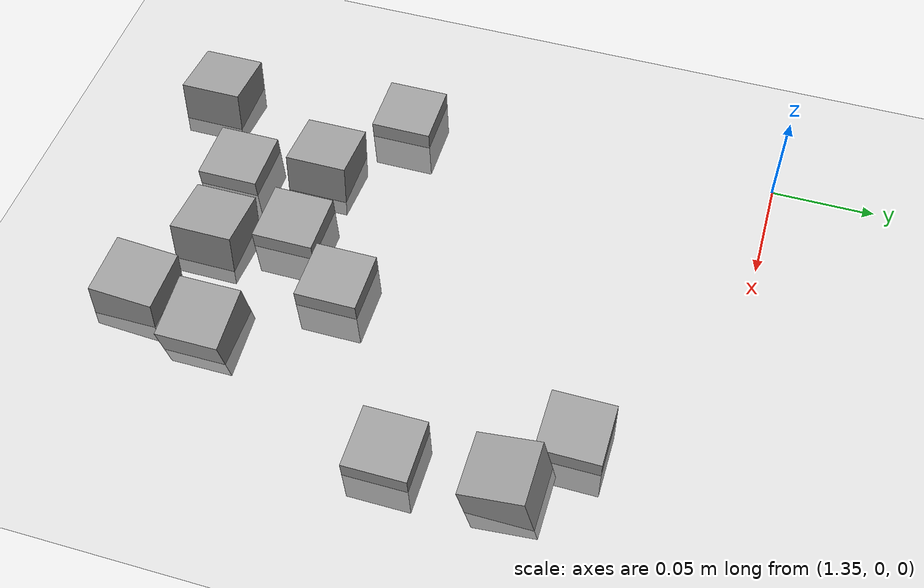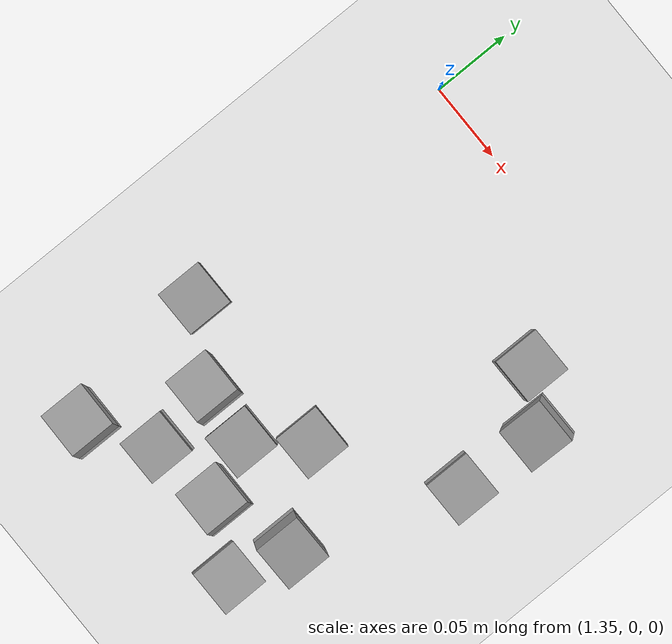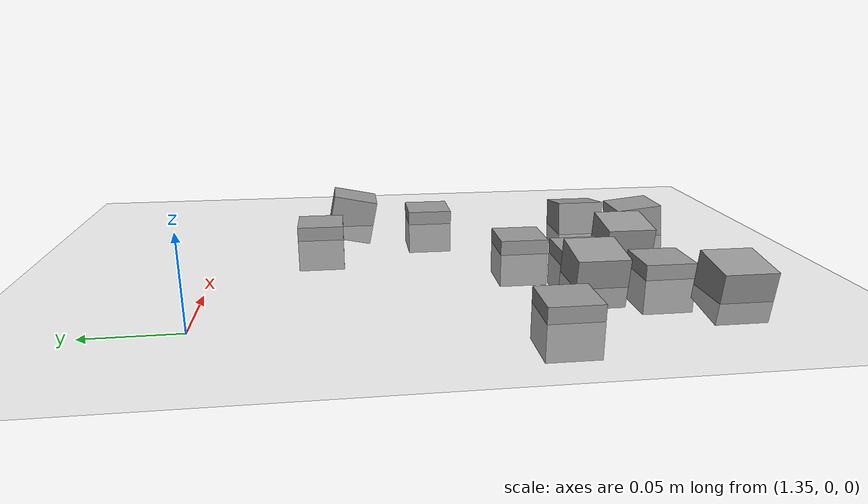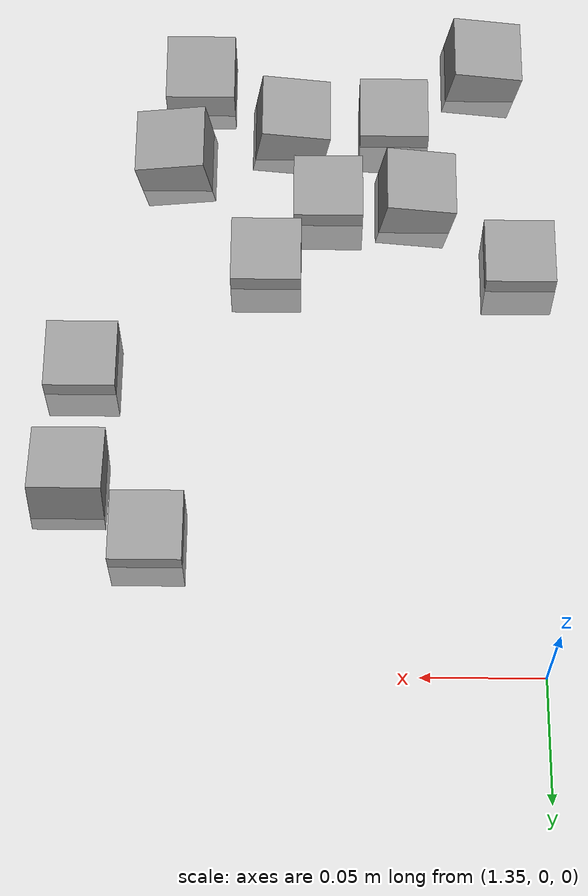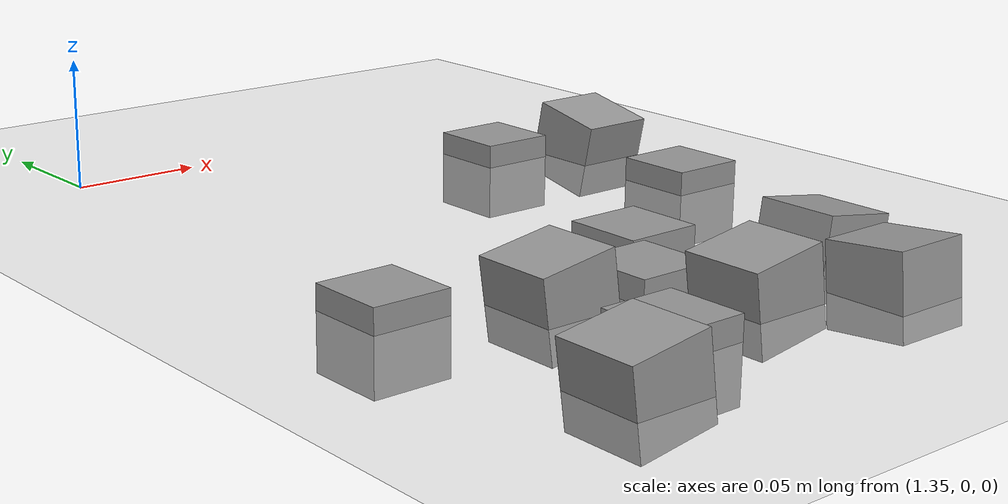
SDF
<sdf version="1.7">
 <world name="default">
  <model name="ground_plane">
   <static>1</static>
   <link name="link">
    <collision name="collision">
     <geometry><plane><normal>0 0 1</normal><size>100 100</size></plane></geometry>
     <surface><friction><ode><mu>100</mu><mu2>50</mu2></ode></friction></surface>
    </collision>
    <visual name="visual">
     <cast_shadows>0</cast_shadows>
     <geometry><plane><normal>0 0 1</normal><size>100 100</size></plane></geometry>
     <material>
      <script><uri>file://media/materials/scripts/gazebo.material</uri><name>Gazebo/Grey</name></script>
     </material>
    </visual>
   </link>
  </model>
  <model name="stone_road">
   <link name="link_0_clone_0">
    <inertial>
     <mass>1</mass>
     <inertia>
      <ixx>0.166667</ixx>
      <ixy>0</ixy>
      <ixz>0</ixz>
      <iyy>0.166667</iyy>
      <iyz>0</iyz>
      <izz>0.166667</izz>
     </inertia>
    </inertial>
    <pose>-0.104982 -0.15412 0.003778 0.2 -0 0</pose>
    <kinematic>1</kinematic>
    <visual name="visual">
     <geometry><box><size>0.03 0.03 0.03</size></box></geometry>
     <material>
      <lighting>1</lighting>
      <script><uri>file://media/materials/scripts/gazebo.material</uri><name>Gazebo/Grey</name></script>
      <shader type="pixel"><normal_map>__default__</normal_map></shader>
      <ambient>0.3 0.3 0.3 1</ambient>
      <diffuse>0.7 0.7 0.7 1</diffuse>
      <specular>0.01 0.01 0.01 1</specular>
      <emissive>0 0 0 1</emissive>
     </material>
    </visual>
    <collision name="collision">
     <geometry><box><size>0.03 0.03 0.03</size></box></geometry>
     <surface>
      <friction>
       <ode><mu>1</mu><mu2>1</mu2><fdir1>0 0 0</fdir1><slip1>0</slip1><slip2>0</slip2></ode>
       <torsional>
        <coefficient>1</coefficient>
        <patch_radius>0</patch_radius>
        <surface_radius>0</surface_radius>
        <use_patch_radius>1</use_patch_radius>
        <ode><slip>0</slip></ode>
       </torsional>
      </friction>
      <bounce><restitution_coefficient>0</restitution_coefficient><threshold>1e+06</threshold></bounce>
      <contact>
       <collide_without_contact>0</collide_without_contact>
       <collide_without_contact_bitmask>1</collide_without_contact_bitmask>
       <collide_bitmask>1</collide_bitmask>
       <ode>
        <soft_cfm>0</soft_cfm>
        <soft_erp>0.2</soft_erp>
        <kp>1e+13</kp>
        <kd>1</kd>
        <max_vel>0.01</max_vel>
        <min_depth>0</min_depth>
       </ode>
       <bullet>
        <split_impulse>1</split_impulse>
        <split_impulse_penetration_threshold>-0.01</split_impulse_penetration_threshold>
        <soft_cfm>0</soft_cfm>
        <soft_erp>0.2</soft_erp>
        <kp>1e+13</kp>
        <kd>1</kd>
       </bullet>
      </contact>
     </surface>
    </collision>
   </link>
   <link name="link_0_clone_2_clone_2_clone_13_clone_clone_16_clone_27">
    <inertial>
     <mass>1</mass>
     <inertia>
      <ixx>0.166667</ixx>
      <ixy>0</ixy>
      <ixz>0</ixz>
      <iyy>0.166667</iyy>
      <iyz>0</iyz>
      <izz>0.166667</izz>
     </inertia>
    </inertial>
    <pose>-0.137316 -0.132225 -0.006222 0 -0 0</pose>
    <kinematic>1</kinematic>
    <visual name="visual">
     <geometry><box><size>0.03 0.03 0.03</size></box></geometry>
     <material>
      <lighting>1</lighting>
      <script><uri>file://media/materials/scripts/gazebo.material</uri><name>Gazebo/Grey</name></script>
      <shader type="pixel"><normal_map>__default__</normal_map></shader>
      <ambient>0.3 0.3 0.3 1</ambient>
      <diffuse>0.7 0.7 0.7 1</diffuse>
      <specular>0.01 0.01 0.01 1</specular>
      <emissive>0 0 0 1</emissive>
     </material>
    </visual>
    <collision name="collision">
     <geometry><box><size>0.03 0.03 0.03</size></box></geometry>
     <surface>
      <friction>
       <ode><mu>1</mu><mu2>1</mu2><fdir1>0 0 0</fdir1><slip1>0</slip1><slip2>0</slip2></ode>
       <torsional>
        <coefficient>1</coefficient>
        <patch_radius>0</patch_radius>
        <surface_radius>0</surface_radius>
        <use_patch_radius>1</use_patch_radius>
        <ode><slip>0</slip></ode>
       </torsional>
      </friction>
      <bounce><restitution_coefficient>0</restitution_coefficient><threshold>1e+06</threshold></bounce>
      <contact>
       <collide_without_contact>0</collide_without_contact>
       <collide_without_contact_bitmask>1</collide_without_contact_bitmask>
       <collide_bitmask>1</collide_bitmask>
       <ode>
        <soft_cfm>0</soft_cfm>
        <soft_erp>0.2</soft_erp>
        <kp>1e+13</kp>
        <kd>1</kd>
        <max_vel>0.01</max_vel>
        <min_depth>0</min_depth>
       </ode>
       <bullet>
        <split_impulse>1</split_impulse>
        <split_impulse_penetration_threshold>-0.01</split_impulse_penetration_threshold>
        <soft_cfm>0</soft_cfm>
        <soft_erp>0.2</soft_erp>
        <kp>1e+13</kp>
        <kd>1</kd>
       </bullet>
      </contact>
     </surface>
    </collision>
   </link>
   <link name="link_0_clone_2_clone_2_clone_13_clone_clone_16_clone_28">
    <inertial>
     <mass>1</mass>
     <inertia>
      <ixx>0.166667</ixx>
      <ixy>0</ixy>
      <ixz>0</ixz>
      <iyy>0.166667</iyy>
      <iyz>0</iyz>
      <izz>0.166667</izz>
     </inertia>
    </inertial>
    <pose>-0.10708 -0.209042 -0.006222 0 -0 0</pose>
    <kinematic>1</kinematic>
    <visual name="visual">
     <geometry><box><size>0.03 0.03 0.03</size></box></geometry>
     <material>
      <lighting>1</lighting>
      <script><uri>file://media/materials/scripts/gazebo.material</uri><name>Gazebo/Grey</name></script>
      <shader type="pixel"><normal_map>__default__</normal_map></shader>
      <ambient>0.3 0.3 0.3 1</ambient>
      <diffuse>0.7 0.7 0.7 1</diffuse>
      <specular>0.01 0.01 0.01 1</specular>
      <emissive>0 0 0 1</emissive>
     </material>
    </visual>
    <collision name="collision">
     <geometry><box><size>0.03 0.03 0.03</size></box></geometry>
     <surface>
      <friction>
       <ode><mu>1</mu><mu2>1</mu2><fdir1>0 0 0</fdir1><slip1>0</slip1><slip2>0</slip2></ode>
       <torsional>
        <coefficient>1</coefficient>
        <patch_radius>0</patch_radius>
        <surface_radius>0</surface_radius>
        <use_patch_radius>1</use_patch_radius>
        <ode><slip>0</slip></ode>
       </torsional>
      </friction>
      <bounce><restitution_coefficient>0</restitution_coefficient><threshold>1e+06</threshold></bounce>
      <contact>
       <collide_without_contact>0</collide_without_contact>
       <collide_without_contact_bitmask>1</collide_without_contact_bitmask>
       <collide_bitmask>1</collide_bitmask>
       <ode>
        <soft_cfm>0</soft_cfm>
        <soft_erp>0.2</soft_erp>
        <kp>1e+13</kp>
        <kd>1</kd>
        <max_vel>0.01</max_vel>
        <min_depth>0</min_depth>
       </ode>
       <bullet>
        <split_impulse>1</split_impulse>
        <split_impulse_penetration_threshold>-0.01</split_impulse_penetration_threshold>
        <soft_cfm>0</soft_cfm>
        <soft_erp>0.2</soft_erp>
        <kp>1e+13</kp>
        <kd>1</kd>
       </bullet>
      </contact>
     </surface>
    </collision>
   </link>
   <static>0</static>
   <pose>1.64646 0.071889 -0 0 -0 0</pose>
  </model>
  <model name="stone_road_1">
   <link name="link_0_clone_2_clone_2_clone_10">
    <inertial>
     <mass>1</mass>
     <inertia>
      <ixx>0.166667</ixx>
      <ixy>0</ixy>
      <ixz>0</ixz>
      <iyy>0.166667</iyy>
      <iyz>0</iyz>
      <izz>0.166667</izz>
     </inertia>
    </inertial>
    <pose>0.09869 0.163436 0.003778 0 -0.15 0</pose>
    <kinematic>1</kinematic>
    <visual name="visual">
     <geometry><box><size>0.03 0.03 0.03</size></box></geometry>
     <material>
      <lighting>1</lighting>
      <script><uri>file://media/materials/scripts/gazebo.material</uri><name>Gazebo/Grey</name></script>
      <shader type="pixel"><normal_map>__default__</normal_map></shader>
      <ambient>0.3 0.3 0.3 1</ambient>
      <diffuse>0.7 0.7 0.7 1</diffuse>
      <specular>0.01 0.01 0.01 1</specular>
      <emissive>0 0 0 1</emissive>
     </material>
    </visual>
    <collision name="collision">
     <geometry><box><size>0.03 0.03 0.03</size></box></geometry>
     <surface>
      <friction>
       <ode><mu>1</mu><mu2>1</mu2><fdir1>0 0 0</fdir1><slip1>0</slip1><slip2>0</slip2></ode>
       <torsional>
        <coefficient>1</coefficient>
        <patch_radius>0</patch_radius>
        <surface_radius>0</surface_radius>
        <use_patch_radius>1</use_patch_radius>
        <ode><slip>0</slip></ode>
       </torsional>
      </friction>
      <bounce><restitution_coefficient>0</restitution_coefficient><threshold>1e+06</threshold></bounce>
      <contact>
       <collide_without_contact>0</collide_without_contact>
       <collide_without_contact_bitmask>1</collide_without_contact_bitmask>
       <collide_bitmask>1</collide_bitmask>
       <ode>
        <soft_cfm>0</soft_cfm>
        <soft_erp>0.2</soft_erp>
        <kp>1e+13</kp>
        <kd>1</kd>
        <max_vel>0.01</max_vel>
        <min_depth>0</min_depth>
       </ode>
       <bullet>
        <split_impulse>1</split_impulse>
        <split_impulse_penetration_threshold>-0.01</split_impulse_penetration_threshold>
        <soft_cfm>0</soft_cfm>
        <soft_erp>0.2</soft_erp>
        <kp>1e+13</kp>
        <kd>1</kd>
       </bullet>
      </contact>
     </surface>
    </collision>
   </link>
   <link name="link_0_clone_2_clone_2_clone_12">
    <inertial>
     <mass>1</mass>
     <inertia>
      <ixx>0.166667</ixx>
      <ixy>0</ixy>
      <ixz>0</ixz>
      <iyy>0.166667</iyy>
      <iyz>0</iyz>
      <izz>0.166667</izz>
     </inertia>
    </inertial>
    <pose>0.044693 0.200081 0.003778 0 -0.15 0</pose>
    <kinematic>1</kinematic>
    <visual name="visual">
     <geometry><box><size>0.03 0.03 0.03</size></box></geometry>
     <material>
      <lighting>1</lighting>
      <script><uri>file://media/materials/scripts/gazebo.material</uri><name>Gazebo/Grey</name></script>
      <shader type="pixel"><normal_map>__default__</normal_map></shader>
      <ambient>0.3 0.3 0.3 1</ambient>
      <diffuse>0.7 0.7 0.7 1</diffuse>
      <specular>0.01 0.01 0.01 1</specular>
      <emissive>0 0 0 1</emissive>
     </material>
    </visual>
    <collision name="collision">
     <geometry><box><size>0.03 0.03 0.03</size></box></geometry>
     <surface>
      <friction>
       <ode><mu>1</mu><mu2>1</mu2><fdir1>0 0 0</fdir1><slip1>0</slip1><slip2>0</slip2></ode>
       <torsional>
        <coefficient>1</coefficient>
        <patch_radius>0</patch_radius>
        <surface_radius>0</surface_radius>
        <use_patch_radius>1</use_patch_radius>
        <ode><slip>0</slip></ode>
       </torsional>
      </friction>
      <bounce><restitution_coefficient>0</restitution_coefficient><threshold>1e+06</threshold></bounce>
      <contact>
       <collide_without_contact>0</collide_without_contact>
       <collide_without_contact_bitmask>1</collide_without_contact_bitmask>
       <collide_bitmask>1</collide_bitmask>
       <ode>
        <soft_cfm>0</soft_cfm>
        <soft_erp>0.2</soft_erp>
        <kp>1e+13</kp>
        <kd>1</kd>
        <max_vel>0.01</max_vel>
        <min_depth>0</min_depth>
       </ode>
       <bullet>
        <split_impulse>1</split_impulse>
        <split_impulse_penetration_threshold>-0.01</split_impulse_penetration_threshold>
        <soft_cfm>0</soft_cfm>
        <soft_erp>0.2</soft_erp>
        <kp>1e+13</kp>
        <kd>1</kd>
       </bullet>
      </contact>
     </surface>
    </collision>
   </link>
   <link name="link_0_clone_2_clone_2_clone_13">
    <inertial>
     <mass>1</mass>
     <inertia>
      <ixx>0.166667</ixx>
      <ixy>0</ixy>
      <ixz>0</ixz>
      <iyy>0.166667</iyy>
      <iyz>0</iyz>
      <izz>0.166667</izz>
     </inertia>
    </inertial>
    <pose>0.014407 0.13189 0.003778 0 -0.15 0</pose>
    <kinematic>1</kinematic>
    <visual name="visual">
     <geometry><box><size>0.03 0.03 0.03</size></box></geometry>
     <material>
      <lighting>1</lighting>
      <script><uri>file://media/materials/scripts/gazebo.material</uri><name>Gazebo/Grey</name></script>
      <shader type="pixel"><normal_map>__default__</normal_map></shader>
      <ambient>0.3 0.3 0.3 1</ambient>
      <diffuse>0.7 0.7 0.7 1</diffuse>
      <specular>0.01 0.01 0.01 1</specular>
      <emissive>0 0 0 1</emissive>
     </material>
    </visual>
    <collision name="collision">
     <geometry><box><size>0.03 0.03 0.03</size></box></geometry>
     <surface>
      <friction>
       <ode><mu>1</mu><mu2>1</mu2><fdir1>0 0 0</fdir1><slip1>0</slip1><slip2>0</slip2></ode>
       <torsional>
        <coefficient>1</coefficient>
        <patch_radius>0</patch_radius>
        <surface_radius>0</surface_radius>
        <use_patch_radius>1</use_patch_radius>
        <ode><slip>0</slip></ode>
       </torsional>
      </friction>
      <bounce><restitution_coefficient>0</restitution_coefficient><threshold>1e+06</threshold></bounce>
      <contact>
       <collide_without_contact>0</collide_without_contact>
       <collide_without_contact_bitmask>1</collide_without_contact_bitmask>
       <collide_bitmask>1</collide_bitmask>
       <ode>
        <soft_cfm>0</soft_cfm>
        <soft_erp>0.2</soft_erp>
        <kp>1e+13</kp>
        <kd>1</kd>
        <max_vel>0.01</max_vel>
        <min_depth>0</min_depth>
       </ode>
       <bullet>
        <split_impulse>1</split_impulse>
        <split_impulse_penetration_threshold>-0.01</split_impulse_penetration_threshold>
        <soft_cfm>0</soft_cfm>
        <soft_erp>0.2</soft_erp>
        <kp>1e+13</kp>
        <kd>1</kd>
       </bullet>
      </contact>
     </surface>
    </collision>
   </link>
   <link name="link_0_clone_2_clone_2_clone_13_clone">
    <inertial>
     <mass>1</mass>
     <inertia>
      <ixx>0.166667</ixx>
      <ixy>0</ixy>
      <ixz>0</ixz>
      <iyy>0.166667</iyy>
      <iyz>0</iyz>
      <izz>0.166667</izz>
     </inertia>
    </inertial>
    <pose>0.138846 0.140956 0.003778 -0.1 0 0</pose>
    <kinematic>1</kinematic>
    <visual name="visual">
     <geometry><box><size>0.03 0.03 0.03</size></box></geometry>
     <material>
      <lighting>1</lighting>
      <script><uri>file://media/materials/scripts/gazebo.material</uri><name>Gazebo/Grey</name></script>
      <shader type="pixel"><normal_map>__default__</normal_map></shader>
      <ambient>0.3 0.3 0.3 1</ambient>
      <diffuse>0.7 0.7 0.7 1</diffuse>
      <specular>0.01 0.01 0.01 1</specular>
      <emissive>0 0 0 1</emissive>
     </material>
    </visual>
    <collision name="collision">
     <geometry><box><size>0.03 0.03 0.03</size></box></geometry>
     <surface>
      <friction>
       <ode><mu>1</mu><mu2>1</mu2><fdir1>0 0 0</fdir1><slip1>0</slip1><slip2>0</slip2></ode>
       <torsional>
        <coefficient>1</coefficient>
        <patch_radius>0</patch_radius>
        <surface_radius>0</surface_radius>
        <use_patch_radius>1</use_patch_radius>
        <ode><slip>0</slip></ode>
       </torsional>
      </friction>
      <bounce><restitution_coefficient>0</restitution_coefficient><threshold>1e+06</threshold></bounce>
      <contact>
       <collide_without_contact>0</collide_without_contact>
       <collide_without_contact_bitmask>1</collide_without_contact_bitmask>
       <collide_bitmask>1</collide_bitmask>
       <ode>
        <soft_cfm>0</soft_cfm>
        <soft_erp>0.2</soft_erp>
        <kp>1e+13</kp>
        <kd>1</kd>
        <max_vel>0.01</max_vel>
        <min_depth>0</min_depth>
       </ode>
       <bullet>
        <split_impulse>1</split_impulse>
        <split_impulse_penetration_threshold>-0.01</split_impulse_penetration_threshold>
        <soft_cfm>0</soft_cfm>
        <soft_erp>0.2</soft_erp>
        <kp>1e+13</kp>
        <kd>1</kd>
       </bullet>
      </contact>
     </surface>
    </collision>
   </link>
   <link name="link_0_clone_2_clone_2_clone_13_clone_clone_16">
    <inertial>
     <mass>1</mass>
     <inertia>
      <ixx>0.166667</ixx>
      <ixy>0</ixy>
      <ixz>0</ixz>
      <iyy>0.166667</iyy>
      <iyz>0</iyz>
      <izz>0.166667</izz>
     </inertia>
    </inertial>
    <pose>0.108948 0.22849 -0.006222 0 -0 0</pose>
    <kinematic>1</kinematic>
    <visual name="visual">
     <geometry><box><size>0.03 0.03 0.03</size></box></geometry>
     <material>
      <lighting>1</lighting>
      <script><uri>file://media/materials/scripts/gazebo.material</uri><name>Gazebo/Grey</name></script>
      <shader type="pixel"><normal_map>__default__</normal_map></shader>
      <ambient>0.3 0.3 0.3 1</ambient>
      <diffuse>0.7 0.7 0.7 1</diffuse>
      <specular>0.01 0.01 0.01 1</specular>
      <emissive>0 0 0 1</emissive>
     </material>
    </visual>
    <collision name="collision">
     <geometry><box><size>0.03 0.03 0.03</size></box></geometry>
     <surface>
      <friction>
       <ode><mu>1</mu><mu2>1</mu2><fdir1>0 0 0</fdir1><slip1>0</slip1><slip2>0</slip2></ode>
       <torsional>
        <coefficient>1</coefficient>
        <patch_radius>0</patch_radius>
        <surface_radius>0</surface_radius>
        <use_patch_radius>1</use_patch_radius>
        <ode><slip>0</slip></ode>
       </torsional>
      </friction>
      <bounce><restitution_coefficient>0</restitution_coefficient><threshold>1e+06</threshold></bounce>
      <contact>
       <collide_without_contact>0</collide_without_contact>
       <collide_without_contact_bitmask>1</collide_without_contact_bitmask>
       <collide_bitmask>1</collide_bitmask>
       <ode>
        <soft_cfm>0</soft_cfm>
        <soft_erp>0.2</soft_erp>
        <kp>1e+13</kp>
        <kd>1</kd>
        <max_vel>0.01</max_vel>
        <min_depth>0</min_depth>
       </ode>
       <bullet>
        <split_impulse>1</split_impulse>
        <split_impulse_penetration_threshold>-0.01</split_impulse_penetration_threshold>
        <soft_cfm>0</soft_cfm>
        <soft_erp>0.2</soft_erp>
        <kp>1e+13</kp>
        <kd>1</kd>
       </bullet>
      </contact>
     </surface>
    </collision>
   </link>
   <link name="link_0_clone_2_clone_2_clone_13_clone_clone_16_clone">
    <inertial>
     <mass>1</mass>
     <inertia>
      <ixx>0.166667</ixx>
      <ixy>0</ixy>
      <ixz>0</ixz>
      <iyy>0.166667</iyy>
      <iyz>0</iyz>
      <izz>0.166667</izz>
     </inertia>
    </inertial>
    <pose>0.0535 0.156403 -0.006222 0 -0 0</pose>
    <kinematic>1</kinematic>
    <visual name="visual">
     <geometry><box><size>0.03 0.03 0.03</size></box></geometry>
     <material>
      <lighting>1</lighting>
      <script><uri>file://media/materials/scripts/gazebo.material</uri><name>Gazebo/Grey</name></script>
      <shader type="pixel"><normal_map>__default__</normal_map></shader>
      <ambient>0.3 0.3 0.3 1</ambient>
      <diffuse>0.7 0.7 0.7 1</diffuse>
      <specular>0.01 0.01 0.01 1</specular>
      <emissive>0 0 0 1</emissive>
     </material>
    </visual>
    <collision name="collision">
     <geometry><box><size>0.03 0.03 0.03</size></box></geometry>
     <surface>
      <friction>
       <ode><mu>1</mu><mu2>1</mu2><fdir1>0 0 0</fdir1><slip1>0</slip1><slip2>0</slip2></ode>
       <torsional>
        <coefficient>1</coefficient>
        <patch_radius>0</patch_radius>
        <surface_radius>0</surface_radius>
        <use_patch_radius>1</use_patch_radius>
        <ode><slip>0</slip></ode>
       </torsional>
      </friction>
      <bounce><restitution_coefficient>0</restitution_coefficient><threshold>1e+06</threshold></bounce>
      <contact>
       <collide_without_contact>0</collide_without_contact>
       <collide_without_contact_bitmask>1</collide_without_contact_bitmask>
       <collide_bitmask>1</collide_bitmask>
       <ode>
        <soft_cfm>0</soft_cfm>
        <soft_erp>0.2</soft_erp>
        <kp>1e+13</kp>
        <kd>1</kd>
        <max_vel>0.01</max_vel>
        <min_depth>0</min_depth>
       </ode>
       <bullet>
        <split_impulse>1</split_impulse>
        <split_impulse_penetration_threshold>-0.01</split_impulse_penetration_threshold>
        <soft_cfm>0</soft_cfm>
        <soft_erp>0.2</soft_erp>
        <kp>1e+13</kp>
        <kd>1</kd>
       </bullet>
      </contact>
     </surface>
    </collision>
   </link>
   <link name="link_0_clone_2_clone_2_clone_13_clone_clone_16_clone_23">
    <inertial>
     <mass>1</mass>
     <inertia>
      <ixx>0.166667</ixx>
      <ixy>0</ixy>
      <ixz>0</ixz>
      <iyy>0.166667</iyy>
      <iyz>0</iyz>
      <izz>0.166667</izz>
     </inertia>
    </inertial>
    <pose>0.000385 0.228664 -0.006222 0 -0 0</pose>
    <kinematic>1</kinematic>
    <visual name="visual">
     <geometry><box><size>0.03 0.03 0.03</size></box></geometry>
     <material>
      <lighting>1</lighting>
      <script><uri>file://media/materials/scripts/gazebo.material</uri><name>Gazebo/Grey</name></script>
      <shader type="pixel"><normal_map>__default__</normal_map></shader>
      <ambient>0.3 0.3 0.3 1</ambient>
      <diffuse>0.7 0.7 0.7 1</diffuse>
      <specular>0.01 0.01 0.01 1</specular>
      <emissive>0 0 0 1</emissive>
     </material>
    </visual>
    <collision name="collision">
     <geometry><box><size>0.03 0.03 0.03</size></box></geometry>
     <surface>
      <friction>
       <ode><mu>1</mu><mu2>1</mu2><fdir1>0 0 0</fdir1><slip1>0</slip1><slip2>0</slip2></ode>
       <torsional>
        <coefficient>1</coefficient>
        <patch_radius>0</patch_radius>
        <surface_radius>0</surface_radius>
        <use_patch_radius>1</use_patch_radius>
        <ode><slip>0</slip></ode>
       </torsional>
      </friction>
      <bounce><restitution_coefficient>0</restitution_coefficient><threshold>1e+06</threshold></bounce>
      <contact>
       <collide_without_contact>0</collide_without_contact>
       <collide_without_contact_bitmask>1</collide_without_contact_bitmask>
       <collide_bitmask>1</collide_bitmask>
       <ode>
        <soft_cfm>0</soft_cfm>
        <soft_erp>0.2</soft_erp>
        <kp>1e+13</kp>
        <kd>1</kd>
        <max_vel>0.01</max_vel>
        <min_depth>0</min_depth>
       </ode>
       <bullet>
        <split_impulse>1</split_impulse>
        <split_impulse_penetration_threshold>-0.01</split_impulse_penetration_threshold>
        <soft_cfm>0</soft_cfm>
        <soft_erp>0.2</soft_erp>
        <kp>1e+13</kp>
        <kd>1</kd>
       </bullet>
      </contact>
     </surface>
    </collision>
   </link>
   <link name="link_0_clone_2_clone_2_clone_13_clone_clone_16_clone_24">
    <inertial>
     <mass>1</mass>
     <inertia>
      <ixx>0.166667</ixx>
      <ixy>0</ixy>
      <ixz>0</ixz>
      <iyy>0.166667</iyy>
      <iyz>0</iyz>
      <izz>0.166667</izz>
     </inertia>
    </inertial>
    <pose>0.08246 0.196776 -0.006222 0 -0 0</pose>
    <kinematic>1</kinematic>
    <visual name="visual">
     <geometry><box><size>0.03 0.03 0.03</size></box></geometry>
     <material>
      <lighting>1</lighting>
      <script><uri>file://media/materials/scripts/gazebo.material</uri><name>Gazebo/Grey</name></script>
      <shader type="pixel"><normal_map>__default__</normal_map></shader>
      <ambient>0.3 0.3 0.3 1</ambient>
      <diffuse>0.7 0.7 0.7 1</diffuse>
      <specular>0.01 0.01 0.01 1</specular>
      <emissive>0 0 0 1</emissive>
     </material>
    </visual>
    <collision name="collision">
     <geometry><box><size>0.03 0.03 0.03</size></box></geometry>
     <surface>
      <friction>
       <ode><mu>1</mu><mu2>1</mu2><fdir1>0 0 0</fdir1><slip1>0</slip1><slip2>0</slip2></ode>
       <torsional>
        <coefficient>1</coefficient>
        <patch_radius>0</patch_radius>
        <surface_radius>0</surface_radius>
        <use_patch_radius>1</use_patch_radius>
        <ode><slip>0</slip></ode>
       </torsional>
      </friction>
      <bounce><restitution_coefficient>0</restitution_coefficient><threshold>1e+06</threshold></bounce>
      <contact>
       <collide_without_contact>0</collide_without_contact>
       <collide_without_contact_bitmask>1</collide_without_contact_bitmask>
       <collide_bitmask>1</collide_bitmask>
       <ode>
        <soft_cfm>0</soft_cfm>
        <soft_erp>0.2</soft_erp>
        <kp>1e+13</kp>
        <kd>1</kd>
        <max_vel>0.01</max_vel>
        <min_depth>0</min_depth>
       </ode>
       <bullet>
        <split_impulse>1</split_impulse>
        <split_impulse_penetration_threshold>-0.01</split_impulse_penetration_threshold>
        <soft_cfm>0</soft_cfm>
        <soft_erp>0.2</soft_erp>
        <kp>1e+13</kp>
        <kd>1</kd>
       </bullet>
      </contact>
     </surface>
    </collision>
   </link>
   <link name="link_0_clone_2_clone_9">
    <inertial>
     <mass>1</mass>
     <inertia>
      <ixx>0.166667</ixx>
      <ixy>0</ixy>
      <ixz>0</ixz>
      <iyy>0.166667</iyy>
      <iyz>0</iyz>
      <izz>0.166667</izz>
     </inertia>
    </inertial>
    <pose>0.148876 0.179752 0.003778 0 0.15 0</pose>
    <kinematic>1</kinematic>
    <visual name="visual">
     <geometry><box><size>0.03 0.03 0.03</size></box></geometry>
     <material>
      <lighting>1</lighting>
      <script><uri>file://media/materials/scripts/gazebo.material</uri><name>Gazebo/Grey</name></script>
      <shader type="pixel"><normal_map>__default__</normal_map></shader>
      <ambient>0.3 0.3 0.3 1</ambient>
      <diffuse>0.7 0.7 0.7 1</diffuse>
      <specular>0.01 0.01 0.01 1</specular>
      <emissive>0 0 0 1</emissive>
     </material>
    </visual>
    <collision name="collision">
     <geometry><box><size>0.03 0.03 0.03</size></box></geometry>
     <surface>
      <friction>
       <ode><mu>1</mu><mu2>1</mu2><fdir1>0 0 0</fdir1><slip1>0</slip1><slip2>0</slip2></ode>
       <torsional>
        <coefficient>1</coefficient>
        <patch_radius>0</patch_radius>
        <surface_radius>0</surface_radius>
        <use_patch_radius>1</use_patch_radius>
        <ode><slip>0</slip></ode>
       </torsional>
      </friction>
      <bounce><restitution_coefficient>0</restitution_coefficient><threshold>1e+06</threshold></bounce>
      <contact>
       <collide_without_contact>0</collide_without_contact>
       <collide_without_contact_bitmask>1</collide_without_contact_bitmask>
       <collide_bitmask>1</collide_bitmask>
       <ode>
        <soft_cfm>0</soft_cfm>
        <soft_erp>0.2</soft_erp>
        <kp>1e+13</kp>
        <kd>1</kd>
        <max_vel>0.01</max_vel>
        <min_depth>0</min_depth>
       </ode>
       <bullet>
        <split_impulse>1</split_impulse>
        <split_impulse_penetration_threshold>-0.01</split_impulse_penetration_threshold>
        <soft_cfm>0</soft_cfm>
        <soft_erp>0.2</soft_erp>
        <kp>1e+13</kp>
        <kd>1</kd>
       </bullet>
      </contact>
     </surface>
    </collision>
   </link>
   <static>0</static>
   <pose>1.35395 -0.41641 -0 0 -0 0</pose>
  </model>
 </world>
</sdf>
